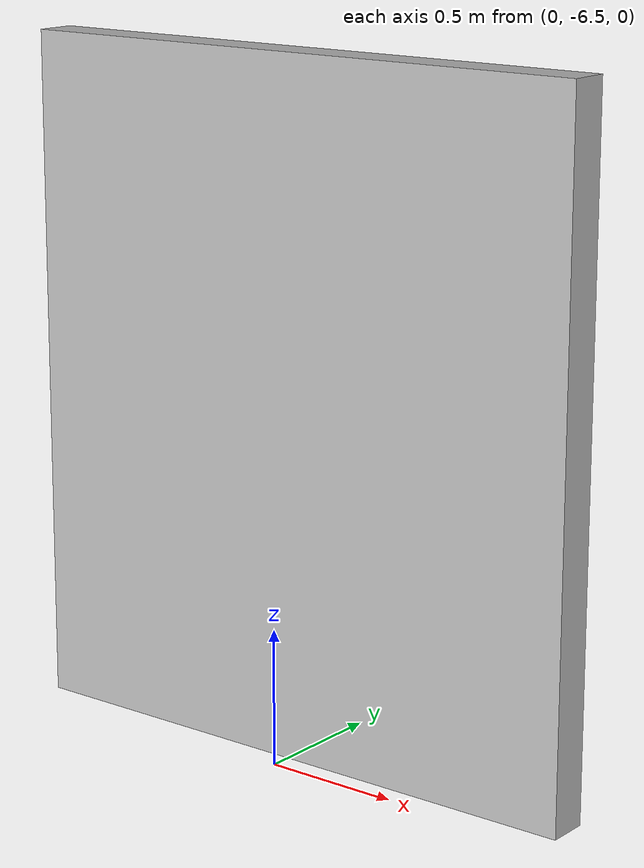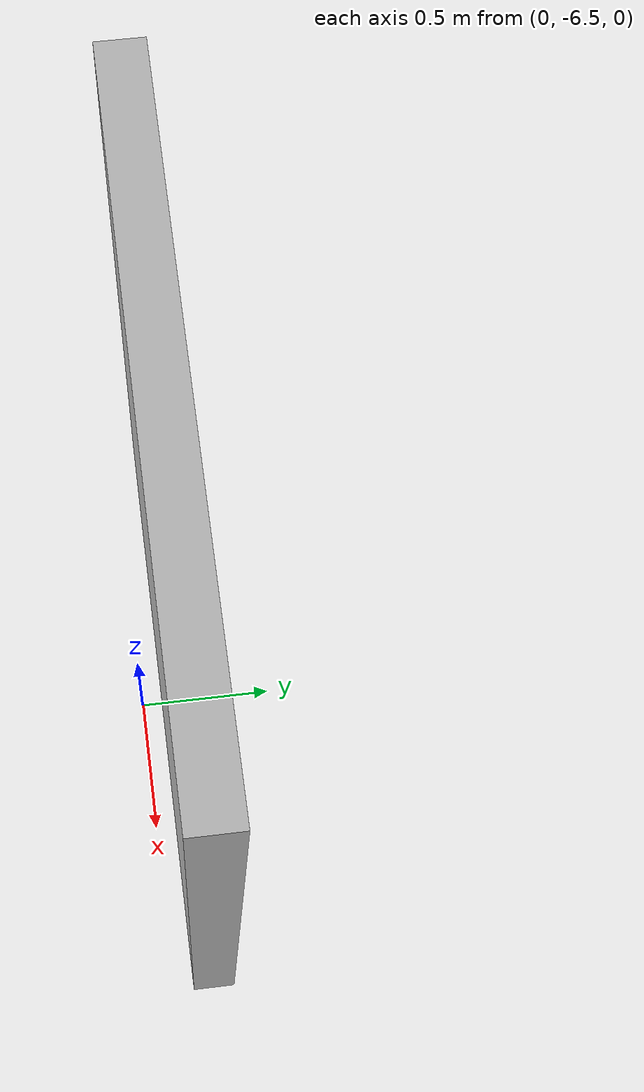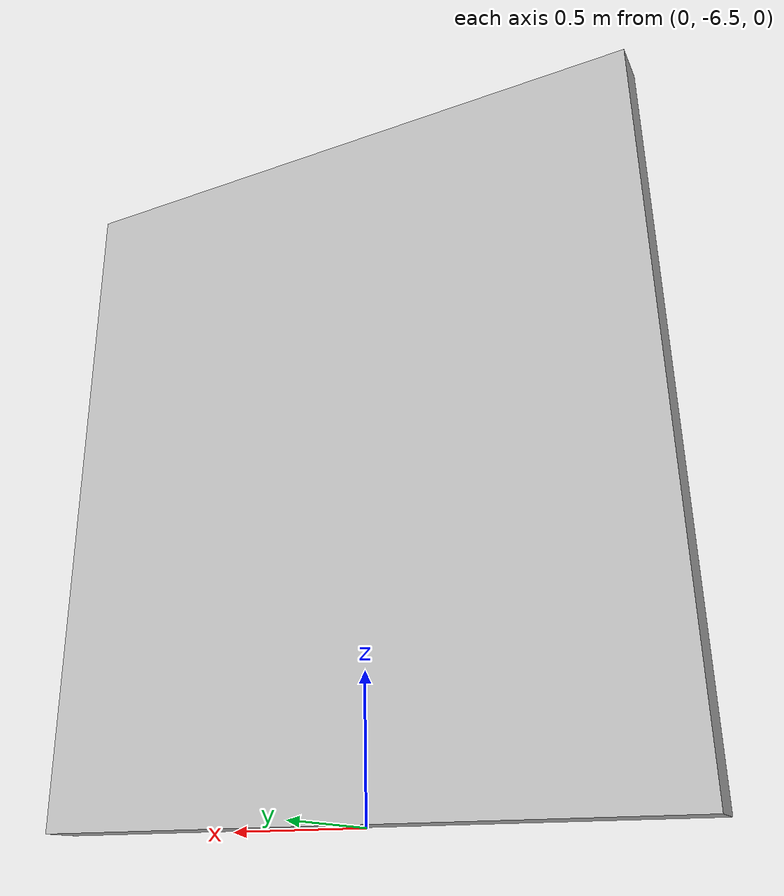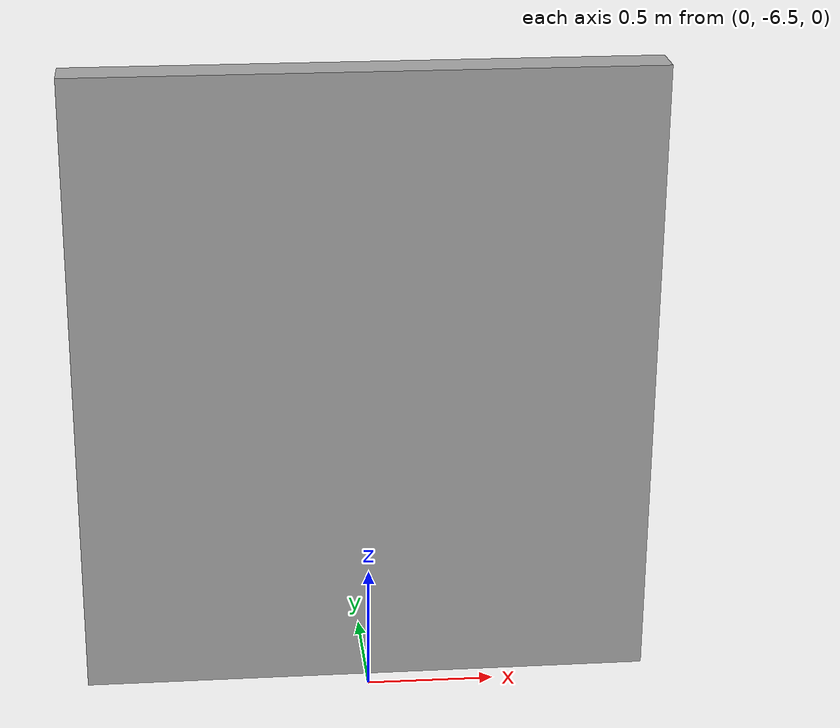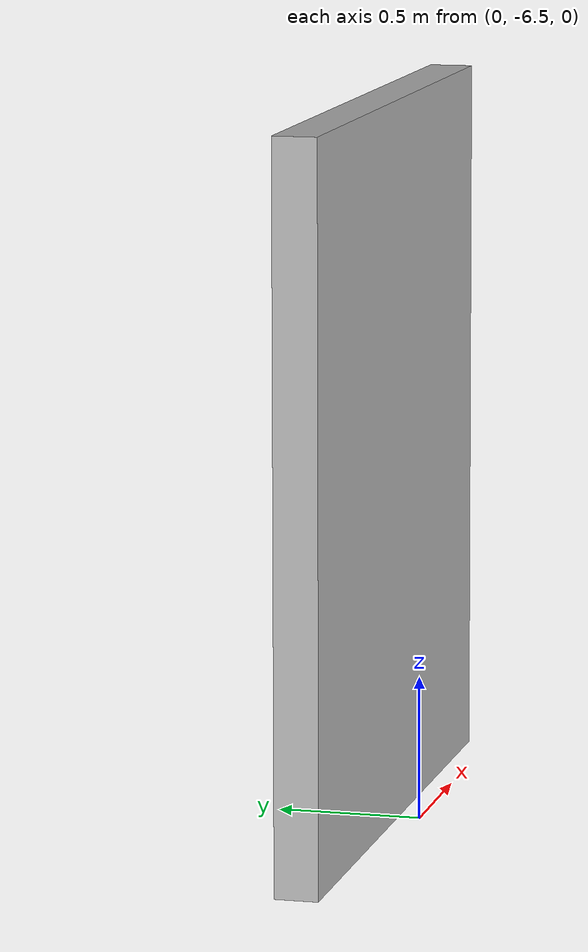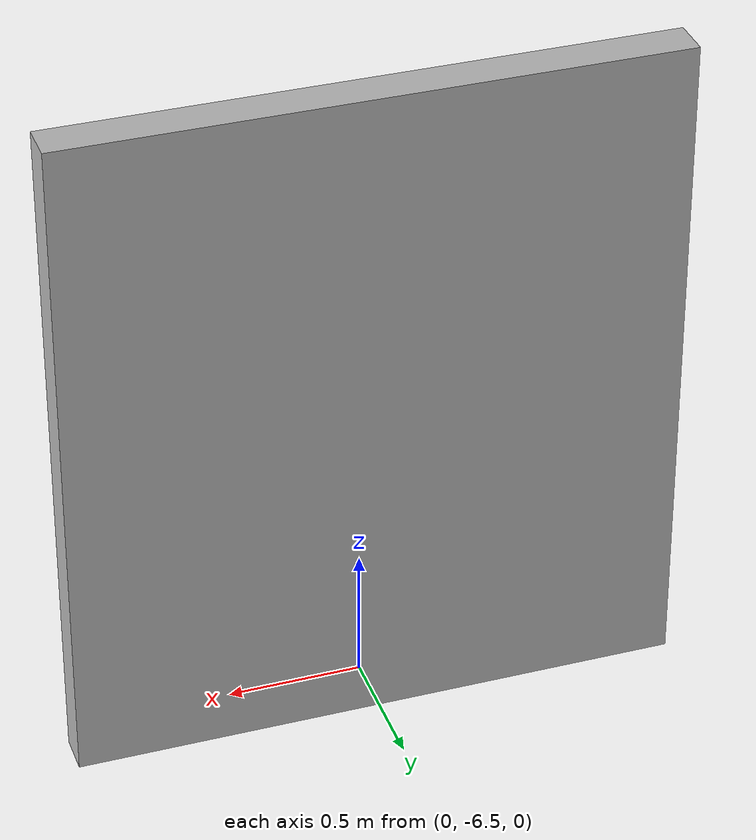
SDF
<?xml version="1.0"?>
<sdf version="1.4">
<model name="shapewall">
  <static>true</static>
    <link name="link">
      <collision name="collision">
        <geometry>
          <box>
              <size>2.25 0.15 2.5</size>
            </box>
        </geometry>
        <pose frame=''>0 0 1.25 0 -0 0</pose>
        <surface>
          <friction>
            <ode/>
          </friction>
        </surface>
      </collision>
      <visual name="visual">
      <pose frame=''>0 0 1.25 0 -0 0</pose>
        <cast_shadows>false</cast_shadows>
        <geometry>
          <box>
              <size>2.25 0.15 2.5</size>
            </box>
        </geometry>
        <material>
          <script>
            <uri>model://shapewall/materials/scripts/texture.material</uri>
            <name>shapewall/Image</name>
          </script>
        </material>
      </visual>
      <pose frame=''>0 -6.35 0 0 -0 0</pose>
    </link>
  </model>
</sdf>
